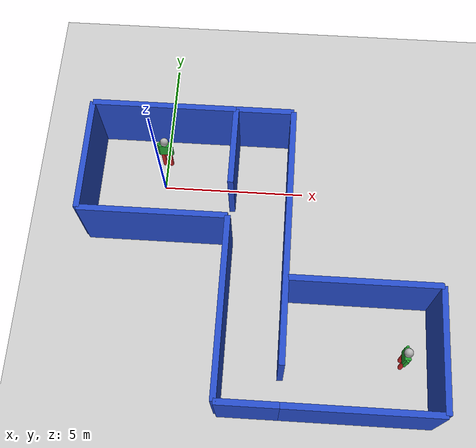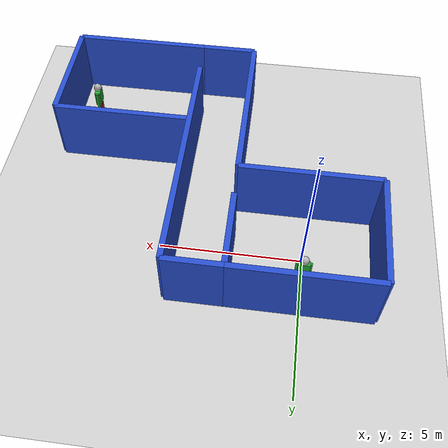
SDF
<sdf version="1.4">
 <world name="default">
  <include><uri>model://ground_plane</uri></include>
  <include><uri>model://sun</uri></include>
  <include><uri>model://home_hallway</uri></include>
  <include>
   <pose>8.5 -6 0 0 0 0</pose>
   <uri>model://actor</uri>
   <name>Ze</name>
   <plugin name="ze_control" filename="libze_control_lib.so"/>
  </include>
  <include>
   <pose>0 1 0 0 0 1.5757</pose>
   <uri>model://actor</uri>
   <name>Manel</name>
   <plugin name="manel_control" filename="libmanel_control_lib.so"/>
  </include>
 </world>
</sdf>

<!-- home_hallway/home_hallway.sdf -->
<sdf version='1.4'>
  <model name="home_hallway">
    <static>1</static>
    <link name ="lwest_wall">
      <visual name="lwest_wall">
	<pose>-2.5 0 1.25 0 -0 0</pose>
        <geometry>
          <box>
            <size>0.2 4 2.5</size>
          </box>
        </geometry>
        <material>
          <script>
            <uri>file://media/materials/scripts/gazebo.material</uri>
            <name>Gazebo/Blue</name>
          </script>
        </material>
      </visual>
      <collision name='lwest_wall'>
        <geometry>
          <box>
	    <size>0.2 4 2.5</size>
          </box>
        </geometry>
        <pose>-2.5 0 1.25 0 -0 0</pose>
      </collision>
     </link>

     <link name ="lnorth_wall">
      <visual name="lnorth_wall">
	<pose>0 2 1.25 0 -0 0</pose>
        <geometry>
          <box>
            <size>5 0.2 2.5</size>
          </box>
        </geometry>
        <material>
          <script>
            <uri>file://media/materials/scripts/gazebo.material</uri>
            <name>Gazebo/Blue</name>
          </script>
        </material>
      </visual>
      <collision name='lnorth_wall'>
        <geometry>
          <box>
	    <size>5 0.2 2.5</size>
          </box>
        </geometry>
        <pose>0 2 1.25 0 -0 0</pose>
      </collision>
    </link>

    <link name ="lsouth_wall">
      <visual name="lsouth_wall">
	<pose>0 -2 1.25 0 -0 0</pose>
        <geometry>
          <box>
            <size>5 0.2 2.5</size>
          </box>
        </geometry>
        <material>
          <script>
            <uri>file://media/materials/scripts/gazebo.material</uri>
            <name>Gazebo/Blue</name>
          </script>
        </material>
      </visual>
      <collision name='lsouth_wall'>
        <geometry>
          <box>
	    <size>5 0.2 2.5</size>
          </box>
        </geometry>
        <pose>0 -2 1.25 0 -0 0</pose>
      </collision>
    </link>

    <link name ="least_wall">
      <visual name="least_wall">
	<pose>2.5 0.6 1.25 0 -0 0</pose>
        <geometry>
          <box>
            <size>0.2 2.8 2.5</size>
          </box>
        </geometry>
        <material>
          <script>
            <uri>file://media/materials/scripts/gazebo.material</uri>
            <name>Gazebo/Blue</name>
          </script>
        </material>
      </visual>
      <collision name='least_wall'>
        <geometry>
          <box>
	    <size>0.2 2.8 2.5</size>
          </box>
        </geometry>
        <pose>2.5 0.6 1.25 0 -0 0</pose>
      </collision>
     </link>

     <link name ="cnorth_wall">
      <visual name="cnorth_wall">
	<pose>3.5 2 1.25 0 -0 0</pose>
        <geometry>
          <box>
            <size>2 0.2 2.5</size>
          </box>
        </geometry>
        <material>
          <script>
            <uri>file://media/materials/scripts/gazebo.material</uri>
            <name>Gazebo/Blue</name>
          </script>
        </material>
      </visual>
      <collision name='cnorth_wall'>
        <geometry>
          <box>
	    <size>2 0.2 2.5</size>
          </box>
        </geometry>
        <pose>3.5 2 1.25 0 -0 0</pose>
      </collision>
     </link>

     <link name ="ceast_wall">
      <visual name="ceast_wall">
	<pose>4.5 -2.4 1.25 0 -0 0</pose>
        <geometry>
          <box>
            <size>0.2 8.8 2.5</size>
          </box>
        </geometry>
        <material>
          <script>
            <uri>file://media/materials/scripts/gazebo.material</uri>
            <name>Gazebo/Blue</name>
          </script>
        </material>
      </visual>
      <collision name='ceast_wall'>
        <geometry>
          <box>
	    <size>0.2 8.8 2.5</size>
          </box>
        </geometry>
        <pose>4.5 -2.4 1.25 0 -0 0</pose>
      </collision>
     </link>

     <link name ="cwest_wall">
      <visual name="cwest_wall">
	<pose>2.5 -5 1.25 0 -0 0</pose>
        <geometry>
          <box>
            <size>0.2 6 2.5</size>
          </box>
        </geometry>
        <material>
          <script>
            <uri>file://media/materials/scripts/gazebo.material</uri>
            <name>Gazebo/Blue</name>
          </script>
        </material>
      </visual>
      <collision name='cwest_wall'>
        <geometry>
          <box>
	    <size>0.2 6 2.5</size>
          </box>
        </geometry>
        <pose>2.5 -5 1.25 0 -0 0</pose>
      </collision>
     </link>

     <link name ="csouth_wall">
      <visual name="csouth_wall">
	<pose>3.5 -8 1.25 0 -0 0</pose>
        <geometry>
          <box>
            <size>2 0.2 2.5</size>
          </box>
        </geometry>
        <material>
          <script>
            <uri>file://media/materials/scripts/gazebo.material</uri>
            <name>Gazebo/Blue</name>
          </script>
        </material>
      </visual>
      <collision name='csouth_wall'>
        <geometry>
          <box>
	    <size>2 0.2 2.5</size>
          </box>
        </geometry>
        <pose>3.5 -8 1.25 0 -0 0</pose>
      </collision>
     </link>

     <link name ="ksouth_wall">
      <visual name="ksouth_wall">
	<pose>7 -8 1.25 0 -0 0</pose>
        <geometry>
          <box>
            <size>5 0.2 2.5</size>
          </box>
        </geometry>
        <material>
          <script>
            <uri>file://media/materials/scripts/gazebo.material</uri>
            <name>Gazebo/Blue</name>
          </script>
        </material>
      </visual>
      <collision name='ksouth_wall'>
        <geometry>
          <box>
	    <size>5 0.2 2.5</size>
          </box>
        </geometry>
        <pose>7 -8 1.25 0 -0 0</pose>
      </collision>
     </link>

     <link name ="kwest_wall">
      <visual name="kwest_wall">
	<pose>9.5 -6 1.25 0 -0 0</pose>
        <geometry>
          <box>
            <size>0.2 4 2.5</size>
          </box>
        </geometry>
        <material>
          <script>
            <uri>file://media/materials/scripts/gazebo.material</uri>
            <name>Gazebo/Blue</name>
          </script>
        </material>
      </visual>
      <collision name='kwest_wall'>
        <geometry>
          <box>
	    <size>0.2 4 2.5</size>
          </box>
        </geometry>
        <pose>9.5 -6 1.25 0 -0 0</pose>
      </collision>
     </link>

     <link name ="knorth_wall">
      <visual name="knorth_wall">
	<pose>7 -4 1.25 0 -0 0</pose>
        <geometry>
          <box>
            <size>5 0.2 2.5</size>
          </box>
        </geometry>
        <material>
          <script>
            <uri>file://media/materials/scripts/gazebo.material</uri>
            <name>Gazebo/Blue</name>
          </script>
        </material>
      </visual>
      <collision name='knorth_wall'>
        <geometry>
          <box>
	    <size>5 0.2 2.5</size>
          </box>
        </geometry>
        <pose>7 -4 1.25 0 -0 0</pose>
      </collision>
     </link>

  </model>
</sdf>

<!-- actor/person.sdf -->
<sdf version='1.4'>
  <model name="person">
    <static>false</static>
    <link name="person">
      <visual name="torso_top">
	<pose>0 0 1.2 0 0 0</pose>
	<geometry>
	  <box>
	    <size>0.2 0.4 0.6</size>
	  </box>
	</geometry>
	<material>
          <script>
            <uri>file://media/materials/scripts/gazebo.material</uri>
            <name>Gazebo/Green</name>
          </script>
        </material>
      </visual>
      <visual name="torso_bottom">
	<pose>0 0 0.85 0 0 0</pose>
	<geometry>
	  <box>
	    <size>0.2 0.1 0.1</size>
	  </box>
	</geometry>
	<material>
          <script>
            <uri>file://media/materials/scripts/gazebo.material</uri>
            <name>Gazebo/Red</name>
          </script>
        </material>
      </visual>
      <collision name="torso_top">
	<pose>0 0 1.2 0 0 0</pose>
	<geometry>
	  <box>
	    <size>0.2 0.4 0.6</size>
	  </box>
	</geometry>
      </collision>
      <collision name="torso_bottom">
	<pose>0 0 0.85 0 0 0</pose>
	<geometry>
	  <box>
	    <size>0.2 0.1 0.1</size>
	  </box>
	</geometry>
      </collision>

      <visual name="head">
	<pose>0 0 1.65 0 0 0</pose>
	<geometry>
	  <sphere>
	    <radius>0.15</radius>
	  </sphere>
	</geometry>
	<material>
          <script>
            <uri>file://media/materials/scripts/gazebo.material</uri>
	    <name>Gazebo/SmileyHappy</name>
          </script>
        </material>
      </visual>
      <collision name = "head">
	<pose>0 0 1.65 0 0 0</pose>
	<geometry>
	  <sphere>
	    <radius>0.15</radius>
	  </sphere>
	</geometry>
      </collision>

      <visual name="left_arm">
	<pose>0 0.225 1.15 0 0 0</pose>
	<geometry>
	  <cylinder>
	    <radius>0.05</radius>
	    <length>0.70</length>
	  </cylinder>
	</geometry>
	<material>
          <script>
            <uri>file://media/materials/scripts/gazebo.material</uri>
            <name>Gazebo/Green</name>
          </script>
        </material>
      </visual>
      <collision name="left_arm">
	<pose>0 0.225 1.15 0 0 0</pose>
	<geometry>
	  <cylinder>
	    <radius>0.05</radius>
	    <length>0.70</length>
	  </cylinder>
	</geometry>
      </collision>

      <visual name ="right_arm">
	<pose>0 -0.225 1.15 0 0 0</pose>
	<geometry>
	  <cylinder>
	    <radius>0.05</radius>
	    <length>0.70</length>
	  </cylinder>
	</geometry>
	<material>
          <script>
            <uri>file://media/materials/scripts/gazebo.material</uri>
            <name>Gazebo/Green</name>
          </script>
        </material>
      </visual>
      <collision name ="right_arm">
	<pose>0 -0.225 1.15 0 0 0</pose>
	<geometry>
	  <cylinder>
	    <radius>0.05</radius>
	    <length>0.70</length>
	  </cylinder>
	</geometry>
      </collision>

      <visual name ="left_leg">
	<pose>0 0.115 0.445 0 0 0</pose>
	<geometry>
	  <cylinder>
	    <radius>0.08</radius>
	    <length>0.89</length>
	  </cylinder>
	</geometry>
	<material>
          <script>
            <uri>file://media/materials/scripts/gazebo.material</uri>
            <name>Gazebo/Red</name>
          </script>
        </material>
      </visual>
      <collision name ="left_leg">
	<pose>0 0.115 0.445 0 0 0</pose>
	<geometry>
	  <cylinder>
	    <radius>0.08</radius>
	    <length>0.89</length>
	  </cylinder>
	</geometry>
      </collision>

      <visual name="right_leg">
	<pose>0 -0.115 0.445 0 0 0</pose>
	<geometry>
	  <cylinder>
	    <radius>0.08</radius>
	    <length>0.89</length>
	  </cylinder>
	</geometry>
	<material>
          <script>
            <uri>file://media/materials/scripts/gazebo.material</uri>
            <name>Gazebo/Red</name>
          </script>
        </material>
      </visual>
      <collision name="right_leg">
	<pose>0 -0.115 0.445 0 0 0</pose>
	<geometry>
	  <cylinder>
	    <radius>0.08</radius>
	    <length>0.89</length>
	  </cylinder>
	</geometry>
      </collision>
    </link>
  </model>
</sdf>
